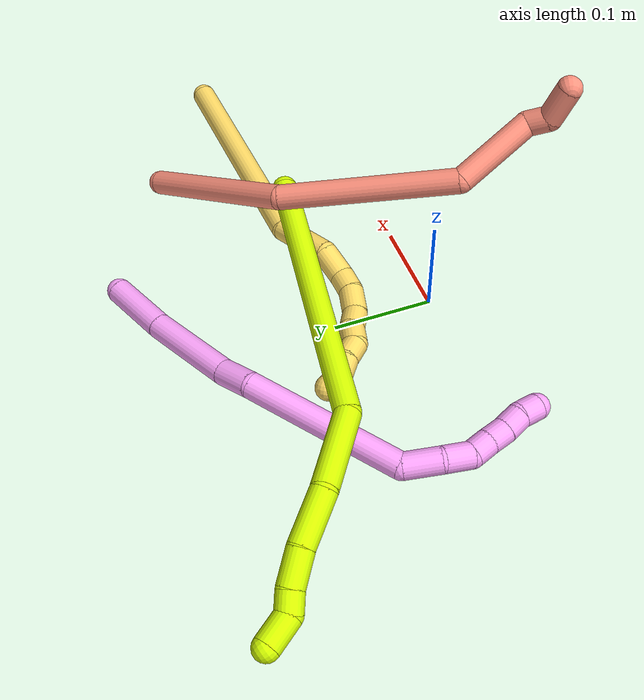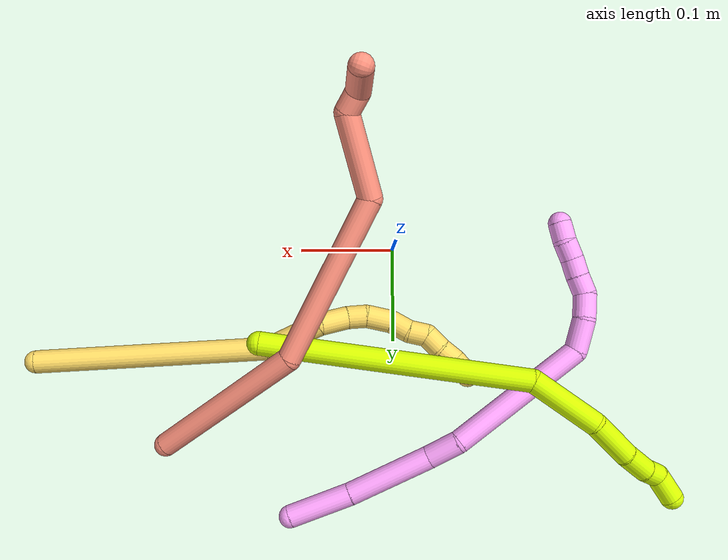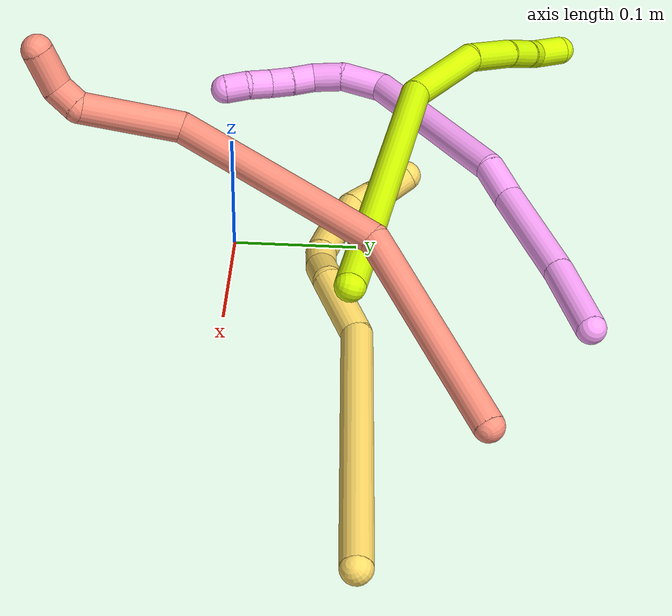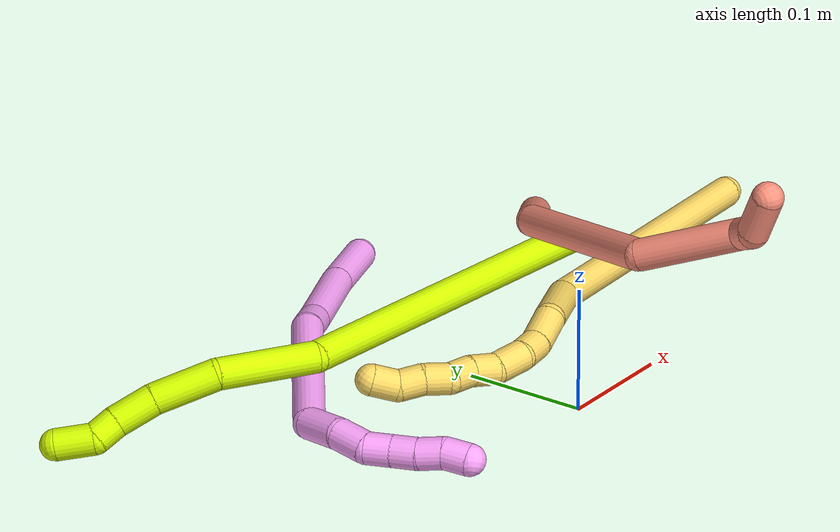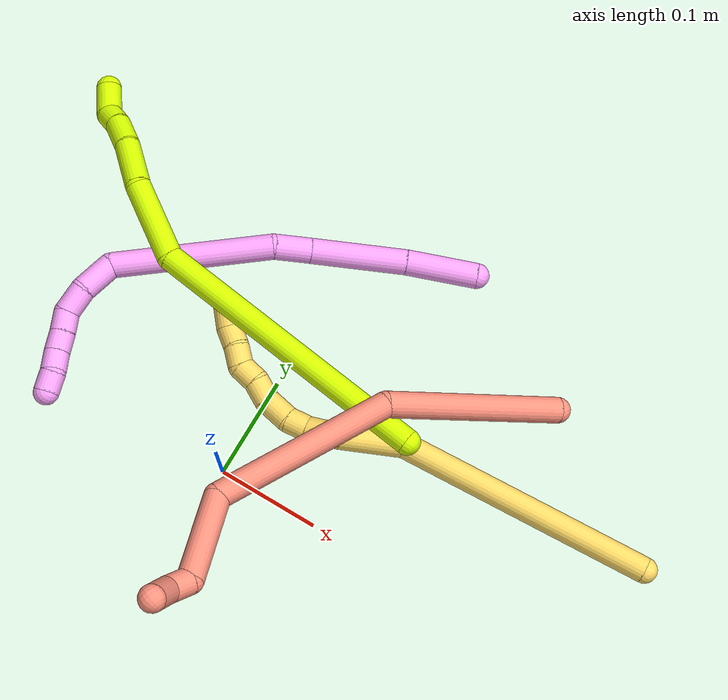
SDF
<sdf version="1.7">
 <world name="default">
  <model name="4">
   <static>0</static>
   <link name="4">
    <collision name="collision-cylinder-e_1_1_4">
     <pose>-0.003451 -0.029742 0.017831 1.03072 -0.099195 -0.056217</pose>
     <geometry><cylinder><radius>0.0125</radius><length>0.069697</length></cylinder></geometry>
     <surface>
      <friction><ode><mu>1.16</mu><mu2>1.16</mu2><slip1>0</slip1><slip2>0</slip2></ode></friction>
      <contact><ode><kp>1e+06</kp><kd>1</kd><max_vel>0</max_vel><min_depth>0.001</min_depth></ode></contact>
     </surface>
    </collision>
    <visual name="visual-cylinder-e_1_1_4">
     <pose>-0.003451 -0.029742 0.017831 1.03072 -0.099195 -0.056217</pose>
     <geometry><cylinder><radius>0.0125</radius><length>0.069697</length></cylinder></geometry>
     <material><ambient>1 0.65098 0.996078 1</ambient></material>
    </visual>
    <collision name="collision-cylinder-e_2_4_5">
     <pose>-0.0152 -0.09884 0.059508 1.02606 -0.178397 -0.100681</pose>
     <geometry><cylinder><radius>0.0125</radius><length>0.093518</length></cylinder></geometry>
     <surface>
      <friction><ode><mu>1.16</mu><mu2>1.16</mu2><slip1>0</slip1><slip2>0</slip2></ode></friction>
      <contact><ode><kp>1e+06</kp><kd>1</kd><max_vel>0</max_vel><min_depth>0.001</min_depth></ode></contact>
     </surface>
    </collision>
    <visual name="visual-cylinder-e_2_4_5">
     <pose>-0.0152 -0.09884 0.059508 1.02606 -0.178397 -0.100681</pose>
     <geometry><cylinder><radius>0.0125</radius><length>0.093518</length></cylinder></geometry>
     <material><ambient>1 0.65098 0.996078 1</ambient></material>
    </visual>
    <collision name="collision-cylinder-e_3_5_6">
     <pose>-0.028229 -0.154291 0.090146 1.17141 -0.264494 -0.176028</pose>
     <geometry><cylinder><radius>0.0125</radius><length>0.036197</length></cylinder></geometry>
     <surface>
      <friction><ode><mu>1.16</mu><mu2>1.16</mu2><slip1>0</slip1><slip2>0</slip2></ode></friction>
      <contact><ode><kp>1e+06</kp><kd>1</kd><max_vel>0</max_vel><min_depth>0.001</min_depth></ode></contact>
     </surface>
    </collision>
    <visual name="visual-cylinder-e_3_5_6">
     <pose>-0.028229 -0.154291 0.090146 1.17141 -0.264494 -0.176028</pose>
     <geometry><cylinder><radius>0.0125</radius><length>0.036197</length></cylinder></geometry>
     <material><ambient>1 0.65098 0.996078 1</ambient></material>
    </visual>
    <collision name="collision-cylinder-e_4_6_7">
     <pose>-0.059554 -0.225541 0.146487 0.838904 -0.344398 -0.154799</pose>
     <geometry><cylinder><radius>0.0125</radius><length>0.157537</length></cylinder></geometry>
     <surface>
      <friction><ode><mu>1.16</mu><mu2>1.16</mu2><slip1>0</slip1><slip2>0</slip2></ode></friction>
      <contact><ode><kp>1e+06</kp><kd>1</kd><max_vel>0</max_vel><min_depth>0.001</min_depth></ode></contact>
     </surface>
    </collision>
    <visual name="visual-cylinder-e_4_6_7">
     <pose>-0.059554 -0.225541 0.146487 0.838904 -0.344398 -0.154799</pose>
     <geometry><cylinder><radius>0.0125</radius><length>0.157537</length></cylinder></geometry>
     <material><ambient>1 0.65098 0.996078 1</ambient></material>
    </visual>
    <collision name="collision-cylinder-e_5_7_8">
     <pose>-0.101418 -0.287171 0.202497 0.786415 -1.03105 -0.46171</pose>
     <geometry><cylinder><radius>0.0125</radius><length>0.035598</length></cylinder></geometry>
     <surface>
      <friction><ode><mu>1.16</mu><mu2>1.16</mu2><slip1>0</slip1><slip2>0</slip2></ode></friction>
      <contact><ode><kp>1e+06</kp><kd>1</kd><max_vel>0</max_vel><min_depth>0.001</min_depth></ode></contact>
     </surface>
    </collision>
    <visual name="visual-cylinder-e_5_7_8">
     <pose>-0.101418 -0.287171 0.202497 0.786415 -1.03105 -0.46171</pose>
     <geometry><cylinder><radius>0.0125</radius><length>0.035598</length></cylinder></geometry>
     <material><ambient>1 0.65098 0.996078 1</ambient></material>
    </visual>
    <collision name="collision-cylinder-e_6_8_9">
     <pose>-0.128416 -0.294906 0.215415 0.192724 -1.05966 -0.113106</pose>
     <geometry><cylinder><radius>0.0125</radius><length>0.026897</length></cylinder></geometry>
     <surface>
      <friction><ode><mu>1.16</mu><mu2>1.16</mu2><slip1>0</slip1><slip2>0</slip2></ode></friction>
      <contact><ode><kp>1e+06</kp><kd>1</kd><max_vel>0</max_vel><min_depth>0.001</min_depth></ode></contact>
     </surface>
    </collision>
    <visual name="visual-cylinder-e_6_8_9">
     <pose>-0.128416 -0.294906 0.215415 0.192724 -1.05966 -0.113106</pose>
     <geometry><cylinder><radius>0.0125</radius><length>0.026897</length></cylinder></geometry>
     <material><ambient>1 0.65098 0.996078 1</ambient></material>
    </visual>
    <collision name="collision-cylinder-e_7_9_10">
     <pose>-0.150055 -0.294017 0.223318 -0.978516 -1.31517 0.780198</pose>
     <geometry><cylinder><radius>0.0125</radius><length>0.020484</length></cylinder></geometry>
     <surface>
      <friction><ode><mu>1.16</mu><mu2>1.16</mu2><slip1>0</slip1><slip2>0</slip2></ode></friction>
      <contact><ode><kp>1e+06</kp><kd>1</kd><max_vel>0</max_vel><min_depth>0.001</min_depth></ode></contact>
     </surface>
    </collision>
    <visual name="visual-cylinder-e_7_9_10">
     <pose>-0.150055 -0.294017 0.223318 -0.978516 -1.31517 0.780198</pose>
     <geometry><cylinder><radius>0.0125</radius><length>0.020484</length></cylinder></geometry>
     <material><ambient>1 0.65098 0.996078 1</ambient></material>
    </visual>
    <collision name="collision-cylinder-e_8_10_11">
     <pose>-0.169771 -0.2905 0.226321 -0.720986 -1.36246 0.593183</pose>
     <geometry><cylinder><radius>0.0125</radius><length>0.020046</length></cylinder></geometry>
     <surface>
      <friction><ode><mu>1.16</mu><mu2>1.16</mu2><slip1>0</slip1><slip2>0</slip2></ode></friction>
      <contact><ode><kp>1e+06</kp><kd>1</kd><max_vel>0</max_vel><min_depth>0.001</min_depth></ode></contact>
     </surface>
    </collision>
    <visual name="visual-cylinder-e_8_10_11">
     <pose>-0.169771 -0.2905 0.226321 -0.720986 -1.36246 0.593183</pose>
     <geometry><cylinder><radius>0.0125</radius><length>0.020046</length></cylinder></geometry>
     <material><ambient>1 0.65098 0.996078 1</ambient></material>
    </visual>
    <collision name="collision-cylinder-e_9_11_12">
     <pose>-0.189449 -0.287538 0.227903 -1.55518 -1.4107 1.3953</pose>
     <geometry><cylinder><radius>0.0125</radius><length>0.02</length></cylinder></geometry>
     <surface>
      <friction><ode><mu>1.16</mu><mu2>1.16</mu2><slip1>0</slip1><slip2>0</slip2></ode></friction>
      <contact><ode><kp>1e+06</kp><kd>1</kd><max_vel>0</max_vel><min_depth>0.001</min_depth></ode></contact>
     </surface>
    </collision>
    <visual name="visual-cylinder-e_9_11_12">
     <pose>-0.189449 -0.287538 0.227903 -1.55518 -1.4107 1.3953</pose>
     <geometry><cylinder><radius>0.0125</radius><length>0.02</length></cylinder></geometry>
     <material><ambient>1 0.65098 0.996078 1</ambient></material>
    </visual>
    <collision name="collision-cylinder-e_10_12_2">
     <pose>-0.208762 -0.284492 0.230932 -0.450149 -1.23102 0.321024</pose>
     <geometry><cylinder><radius>0.0125</radius><length>0.020026</length></cylinder></geometry>
     <surface>
      <friction><ode><mu>1.16</mu><mu2>1.16</mu2><slip1>0</slip1><slip2>0</slip2></ode></friction>
      <contact><ode><kp>1e+06</kp><kd>1</kd><max_vel>0</max_vel><min_depth>0.001</min_depth></ode></contact>
     </surface>
    </collision>
    <visual name="visual-cylinder-e_10_12_2">
     <pose>-0.208762 -0.284492 0.230932 -0.450149 -1.23102 0.321024</pose>
     <geometry><cylinder><radius>0.0125</radius><length>0.020026</length></cylinder></geometry>
     <material><ambient>1 0.65098 0.996078 1</ambient></material>
    </visual>
    <collision name="collision-sphere-2">
     <pose>-0.218202 -0.28304 0.233937 0 -0 0</pose>
     <geometry><sphere><radius>0.0125</radius></sphere></geometry>
     <surface>
      <friction><ode><mu>1.16</mu><mu2>1.16</mu2><slip1>0</slip1><slip2>0</slip2></ode></friction>
      <contact><ode><kp>1e+06</kp><kd>1</kd><max_vel>0</max_vel><min_depth>0.001</min_depth></ode></contact>
     </surface>
    </collision>
    <visual name="visual-sphere-2">
     <pose>-0.218202 -0.28304 0.233937 0 -0 0</pose>
     <geometry><sphere><radius>0.0125</radius></sphere></geometry>
     <material><ambient>1 0.65098 0.996078 1</ambient></material>
    </visual>
    <collision name="collision-sphere-12">
     <pose>-0.199321 -0.285944 0.227928 0 -0 0</pose>
     <geometry><sphere><radius>0.0125</radius></sphere></geometry>
     <surface>
      <friction><ode><mu>1.16</mu><mu2>1.16</mu2><slip1>0</slip1><slip2>0</slip2></ode></friction>
      <contact><ode><kp>1e+06</kp><kd>1</kd><max_vel>0</max_vel><min_depth>0.001</min_depth></ode></contact>
     </surface>
    </collision>
    <visual name="visual-sphere-12">
     <pose>-0.199321 -0.285944 0.227928 0 -0 0</pose>
     <geometry><sphere><radius>0.0125</radius></sphere></geometry>
     <material><ambient>1 0.65098 0.996078 1</ambient></material>
    </visual>
    <collision name="collision-sphere-11">
     <pose>-0.179577 -0.289132 0.227878 0 -0 0</pose>
     <geometry><sphere><radius>0.0125</radius></sphere></geometry>
     <surface>
      <friction><ode><mu>1.16</mu><mu2>1.16</mu2><slip1>0</slip1><slip2>0</slip2></ode></friction>
      <contact><ode><kp>1e+06</kp><kd>1</kd><max_vel>0</max_vel><min_depth>0.001</min_depth></ode></contact>
     </surface>
    </collision>
    <visual name="visual-sphere-11">
     <pose>-0.179577 -0.289132 0.227878 0 -0 0</pose>
     <geometry><sphere><radius>0.0125</radius></sphere></geometry>
     <material><ambient>1 0.65098 0.996078 1</ambient></material>
    </visual>
    <collision name="collision-sphere-10">
     <pose>-0.159965 -0.291869 0.224763 0 -0 0</pose>
     <geometry><sphere><radius>0.0125</radius></sphere></geometry>
     <surface>
      <friction><ode><mu>1.16</mu><mu2>1.16</mu2><slip1>0</slip1><slip2>0</slip2></ode></friction>
      <contact><ode><kp>1e+06</kp><kd>1</kd><max_vel>0</max_vel><min_depth>0.001</min_depth></ode></contact>
     </surface>
    </collision>
    <visual name="visual-sphere-10">
     <pose>-0.159965 -0.291869 0.224763 0 -0 0</pose>
     <geometry><sphere><radius>0.0125</radius></sphere></geometry>
     <material><ambient>1 0.65098 0.996078 1</ambient></material>
    </visual>
    <collision name="collision-sphere-9">
     <pose>-0.140146 -0.296166 0.221872 0 -0 0</pose>
     <geometry><sphere><radius>0.0125</radius></sphere></geometry>
     <surface>
      <friction><ode><mu>1.16</mu><mu2>1.16</mu2><slip1>0</slip1><slip2>0</slip2></ode></friction>
      <contact><ode><kp>1e+06</kp><kd>1</kd><max_vel>0</max_vel><min_depth>0.001</min_depth></ode></contact>
     </surface>
    </collision>
    <visual name="visual-sphere-9">
     <pose>-0.140146 -0.296166 0.221872 0 -0 0</pose>
     <geometry><sphere><radius>0.0125</radius></sphere></geometry>
     <material><ambient>1 0.65098 0.996078 1</ambient></material>
    </visual>
    <collision name="collision-sphere-4">
     <pose>-0.006902 -0.059483 0.035662 0 -0 0</pose>
     <geometry><sphere><radius>0.0125</radius></sphere></geometry>
     <surface>
      <friction><ode><mu>1.16</mu><mu2>1.16</mu2><slip1>0</slip1><slip2>0</slip2></ode></friction>
      <contact><ode><kp>1e+06</kp><kd>1</kd><max_vel>0</max_vel><min_depth>0.001</min_depth></ode></contact>
     </surface>
    </collision>
    <visual name="visual-sphere-4">
     <pose>-0.006902 -0.059483 0.035662 0 -0 0</pose>
     <geometry><sphere><radius>0.0125</radius></sphere></geometry>
     <material><ambient>1 0.65098 0.996078 1</ambient></material>
    </visual>
    <collision name="collision-sphere-1">
     <geometry><sphere><radius>0.0125</radius></sphere></geometry>
     <surface>
      <friction><ode><mu>1.16</mu><mu2>1.16</mu2><slip1>0</slip1><slip2>0</slip2></ode></friction>
      <contact><ode><kp>1e+06</kp><kd>1</kd><max_vel>0</max_vel><min_depth>0.001</min_depth></ode></contact>
     </surface>
    </collision>
    <visual name="visual-sphere-1">
     <geometry><sphere><radius>0.0125</radius></sphere></geometry>
     <material><ambient>1 0.65098 0.996078 1</ambient></material>
    </visual>
    <collision name="collision-sphere-8">
     <pose>-0.116687 -0.293646 0.208958 0 -0 0</pose>
     <geometry><sphere><radius>0.0125</radius></sphere></geometry>
     <surface>
      <friction><ode><mu>1.16</mu><mu2>1.16</mu2><slip1>0</slip1><slip2>0</slip2></ode></friction>
      <contact><ode><kp>1e+06</kp><kd>1</kd><max_vel>0</max_vel><min_depth>0.001</min_depth></ode></contact>
     </surface>
    </collision>
    <visual name="visual-sphere-8">
     <pose>-0.116687 -0.293646 0.208958 0 -0 0</pose>
     <geometry><sphere><radius>0.0125</radius></sphere></geometry>
     <material><ambient>1 0.65098 0.996078 1</ambient></material>
    </visual>
    <collision name="collision-sphere-5">
     <pose>-0.023497 -0.138197 0.083354 0 -0 0</pose>
     <geometry><sphere><radius>0.0125</radius></sphere></geometry>
     <surface>
      <friction><ode><mu>1.16</mu><mu2>1.16</mu2><slip1>0</slip1><slip2>0</slip2></ode></friction>
      <contact><ode><kp>1e+06</kp><kd>1</kd><max_vel>0</max_vel><min_depth>0.001</min_depth></ode></contact>
     </surface>
    </collision>
    <visual name="visual-sphere-5">
     <pose>-0.023497 -0.138197 0.083354 0 -0 0</pose>
     <geometry><sphere><radius>0.0125</radius></sphere></geometry>
     <material><ambient>1 0.65098 0.996078 1</ambient></material>
    </visual>
    <collision name="collision-sphere-6">
     <pose>-0.03296 -0.170385 0.096939 0 -0 0</pose>
     <geometry><sphere><radius>0.0125</radius></sphere></geometry>
     <surface>
      <friction><ode><mu>1.16</mu><mu2>1.16</mu2><slip1>0</slip1><slip2>0</slip2></ode></friction>
      <contact><ode><kp>1e+06</kp><kd>1</kd><max_vel>0</max_vel><min_depth>0.001</min_depth></ode></contact>
     </surface>
    </collision>
    <visual name="visual-sphere-6">
     <pose>-0.03296 -0.170385 0.096939 0 -0 0</pose>
     <geometry><sphere><radius>0.0125</radius></sphere></geometry>
     <material><ambient>1 0.65098 0.996078 1</ambient></material>
    </visual>
    <collision name="collision-sphere-7">
     <pose>-0.086149 -0.280697 0.196035 0 -0 0</pose>
     <geometry><sphere><radius>0.0125</radius></sphere></geometry>
     <surface>
      <friction><ode><mu>1.16</mu><mu2>1.16</mu2><slip1>0</slip1><slip2>0</slip2></ode></friction>
      <contact><ode><kp>1e+06</kp><kd>1</kd><max_vel>0</max_vel><min_depth>0.001</min_depth></ode></contact>
     </surface>
    </collision>
    <visual name="visual-sphere-7">
     <pose>-0.086149 -0.280697 0.196035 0 -0 0</pose>
     <geometry><sphere><radius>0.0125</radius></sphere></geometry>
     <material><ambient>1 0.65098 0.996078 1</ambient></material>
    </visual>
    <inertial>
     <pose>-0.067153 -0.187762 0.128889 0 -0 0</pose>
     <mass>0.5</mass>
     <inertia>
      <ixx>0.000344</ixx>
      <ixy>0</ixy>
      <ixz>0</ixz>
      <iyy>0.000221</iyy>
      <iyz>0</iyz>
      <izz>0.000485</izz>
     </inertia>
    </inertial>
   </link>
   <pose>0.111434 0.288534 0.012502 -2.53262 0.238211 1.85644</pose>
  </model>
  <model name="5">
   <static>0</static>
   <link name="5">
    <collision name="collision-cylinder-e_1_1_4">
     <pose>-0.11102 -0.02168 -0.056233 2.77362 -1.07346 -2.53534</pose>
     <geometry><cylinder><radius>0.0125</radius><length>0.252647</length></cylinder></geometry>
     <surface>
      <friction><ode><mu>1.16</mu><mu2>1.16</mu2><slip1>0</slip1><slip2>0</slip2></ode></friction>
      <contact><ode><kp>1e+06</kp><kd>1</kd><max_vel>0</max_vel><min_depth>0.001</min_depth></ode></contact>
     </surface>
    </collision>
    <visual name="visual-cylinder-e_1_1_4">
     <pose>-0.11102 -0.02168 -0.056233 2.77362 -1.07346 -2.53534</pose>
     <geometry><cylinder><radius>0.0125</radius><length>0.252647</length></cylinder></geometry>
     <material><ambient>1 0.858824 0.4 1</ambient></material>
    </visual>
    <collision name="collision-cylinder-e_2_4_5">
     <pose>-0.24888 -0.058021 -0.1186 1.96704 -1.03619 -1.41639</pose>
     <geometry><cylinder><radius>0.0125</radius><length>0.062386</length></cylinder></geometry>
     <surface>
      <friction><ode><mu>1.16</mu><mu2>1.16</mu2><slip1>0</slip1><slip2>0</slip2></ode></friction>
      <contact><ode><kp>1e+06</kp><kd>1</kd><max_vel>0</max_vel><min_depth>0.001</min_depth></ode></contact>
     </surface>
    </collision>
    <visual name="visual-cylinder-e_2_4_5">
     <pose>-0.24888 -0.058021 -0.1186 1.96704 -1.03619 -1.41639</pose>
     <geometry><cylinder><radius>0.0125</radius><length>0.062386</length></cylinder></geometry>
     <material><ambient>1 0.858824 0.4 1</ambient></material>
    </visual>
    <collision name="collision-cylinder-e_3_5_6">
     <pose>-0.286371 -0.079274 -0.134115 2.52912 -0.748581 -1.78611</pose>
     <geometry><cylinder><radius>0.0125</radius><length>0.031296</length></cylinder></geometry>
     <surface>
      <friction><ode><mu>1.16</mu><mu2>1.16</mu2><slip1>0</slip1><slip2>0</slip2></ode></friction>
      <contact><ode><kp>1e+06</kp><kd>1</kd><max_vel>0</max_vel><min_depth>0.001</min_depth></ode></contact>
     </surface>
    </collision>
    <visual name="visual-cylinder-e_3_5_6">
     <pose>-0.286371 -0.079274 -0.134115 2.52912 -0.748581 -1.78611</pose>
     <geometry><cylinder><radius>0.0125</radius><length>0.031296</length></cylinder></geometry>
     <material><ambient>1 0.858824 0.4 1</ambient></material>
    </visual>
    <collision name="collision-cylinder-e_4_6_7">
     <pose>-0.305931 -0.088152 -0.148883 2.74016 -0.989637 -2.42045</pose>
     <geometry><cylinder><radius>0.0125</radius><length>0.021321</length></cylinder></geometry>
     <surface>
      <friction><ode><mu>1.16</mu><mu2>1.16</mu2><slip1>0</slip1><slip2>0</slip2></ode></friction>
      <contact><ode><kp>1e+06</kp><kd>1</kd><max_vel>0</max_vel><min_depth>0.001</min_depth></ode></contact>
     </surface>
    </collision>
    <visual name="visual-cylinder-e_4_6_7">
     <pose>-0.305931 -0.088152 -0.148883 2.74016 -0.989637 -2.42045</pose>
     <geometry><cylinder><radius>0.0125</radius><length>0.021321</length></cylinder></geometry>
     <material><ambient>1 0.858824 0.4 1</ambient></material>
    </visual>
    <collision name="collision-cylinder-e_5_7_8">
     <pose>-0.325784 -0.089735 -0.162812 -3.05939 -0.906343 2.97309</pose>
     <geometry><cylinder><radius>0.0125</radius><length>0.0278</length></cylinder></geometry>
     <surface>
      <friction><ode><mu>1.16</mu><mu2>1.16</mu2><slip1>0</slip1><slip2>0</slip2></ode></friction>
      <contact><ode><kp>1e+06</kp><kd>1</kd><max_vel>0</max_vel><min_depth>0.001</min_depth></ode></contact>
     </surface>
    </collision>
    <visual name="visual-cylinder-e_5_7_8">
     <pose>-0.325784 -0.089735 -0.162812 -3.05939 -0.906343 2.97309</pose>
     <geometry><cylinder><radius>0.0125</radius><length>0.0278</length></cylinder></geometry>
     <material><ambient>1 0.858824 0.4 1</ambient></material>
    </visual>
    <collision name="collision-cylinder-e_6_8_9">
     <pose>-0.345395 -0.084764 -0.176504 -2.4497 -0.913674 1.8761</pose>
     <geometry><cylinder><radius>0.0125</radius><length>0.021897</length></cylinder></geometry>
     <surface>
      <friction><ode><mu>1.16</mu><mu2>1.16</mu2><slip1>0</slip1><slip2>0</slip2></ode></friction>
      <contact><ode><kp>1e+06</kp><kd>1</kd><max_vel>0</max_vel><min_depth>0.001</min_depth></ode></contact>
     </surface>
    </collision>
    <visual name="visual-cylinder-e_6_8_9">
     <pose>-0.345395 -0.084764 -0.176504 -2.4497 -0.913674 1.8761</pose>
     <geometry><cylinder><radius>0.0125</radius><length>0.021897</length></cylinder></geometry>
     <material><ambient>1 0.858824 0.4 1</ambient></material>
    </visual>
    <collision name="collision-cylinder-e_7_9_10">
     <pose>-0.362585 -0.079627 -0.187055 -2.98173 -1.00011 2.85045</pose>
     <geometry><cylinder><radius>0.0125</radius><length>0.020253</length></cylinder></geometry>
     <surface>
      <friction><ode><mu>1.16</mu><mu2>1.16</mu2><slip1>0</slip1><slip2>0</slip2></ode></friction>
      <contact><ode><kp>1e+06</kp><kd>1</kd><max_vel>0</max_vel><min_depth>0.001</min_depth></ode></contact>
     </surface>
    </collision>
    <visual name="visual-cylinder-e_7_9_10">
     <pose>-0.362585 -0.079627 -0.187055 -2.98173 -1.00011 2.85045</pose>
     <geometry><cylinder><radius>0.0125</radius><length>0.020253</length></cylinder></geometry>
     <material><ambient>1 0.858824 0.4 1</ambient></material>
    </visual>
    <collision name="collision-cylinder-e_8_10_11">
     <pose>-0.377335 -0.072512 -0.197746 -2.27376 -0.650493 1.25823</pose>
     <geometry><cylinder><radius>0.0125</radius><length>0.020568</length></cylinder></geometry>
     <surface>
      <friction><ode><mu>1.16</mu><mu2>1.16</mu2><slip1>0</slip1><slip2>0</slip2></ode></friction>
      <contact><ode><kp>1e+06</kp><kd>1</kd><max_vel>0</max_vel><min_depth>0.001</min_depth></ode></contact>
     </surface>
    </collision>
    <visual name="visual-cylinder-e_8_10_11">
     <pose>-0.377335 -0.072512 -0.197746 -2.27376 -0.650493 1.25823</pose>
     <geometry><cylinder><radius>0.0125</radius><length>0.020568</length></cylinder></geometry>
     <material><ambient>1 0.858824 0.4 1</ambient></material>
    </visual>
    <collision name="collision-cylinder-e_9_11_12">
     <pose>-0.389489 -0.061723 -0.209951 -2.56005 -0.621501 1.64136</pose>
     <geometry><cylinder><radius>0.0125</radius><length>0.020356</length></cylinder></geometry>
     <surface>
      <friction><ode><mu>1.16</mu><mu2>1.16</mu2><slip1>0</slip1><slip2>0</slip2></ode></friction>
      <contact><ode><kp>1e+06</kp><kd>1</kd><max_vel>0</max_vel><min_depth>0.001</min_depth></ode></contact>
     </surface>
    </collision>
    <visual name="visual-cylinder-e_9_11_12">
     <pose>-0.389489 -0.061723 -0.209951 -2.56005 -0.621501 1.64136</pose>
     <geometry><cylinder><radius>0.0125</radius><length>0.020356</length></cylinder></geometry>
     <material><ambient>1 0.858824 0.4 1</ambient></material>
    </visual>
    <collision name="collision-cylinder-e_10_12_2">
     <pose>-0.402278 -0.049558 -0.220052 -1.96686 -0.693343 0.994345</pose>
     <geometry><cylinder><radius>0.0125</radius><length>0.021477</length></cylinder></geometry>
     <surface>
      <friction><ode><mu>1.16</mu><mu2>1.16</mu2><slip1>0</slip1><slip2>0</slip2></ode></friction>
      <contact><ode><kp>1e+06</kp><kd>1</kd><max_vel>0</max_vel><min_depth>0.001</min_depth></ode></contact>
     </surface>
    </collision>
    <visual name="visual-cylinder-e_10_12_2">
     <pose>-0.402278 -0.049558 -0.220052 -1.96686 -0.693343 0.994345</pose>
     <geometry><cylinder><radius>0.0125</radius><length>0.021477</length></cylinder></geometry>
     <material><ambient>1 0.858824 0.4 1</ambient></material>
    </visual>
    <collision name="collision-sphere-2">
     <pose>-0.409141 -0.041938 -0.223238 0 -0 0</pose>
     <geometry><sphere><radius>0.0125</radius></sphere></geometry>
     <surface>
      <friction><ode><mu>1.16</mu><mu2>1.16</mu2><slip1>0</slip1><slip2>0</slip2></ode></friction>
      <contact><ode><kp>1e+06</kp><kd>1</kd><max_vel>0</max_vel><min_depth>0.001</min_depth></ode></contact>
     </surface>
    </collision>
    <visual name="visual-sphere-2">
     <pose>-0.409141 -0.041938 -0.223238 0 -0 0</pose>
     <geometry><sphere><radius>0.0125</radius></sphere></geometry>
     <material><ambient>1 0.858824 0.4 1</ambient></material>
    </visual>
    <collision name="collision-sphere-12">
     <pose>-0.395415 -0.057177 -0.216865 0 -0 0</pose>
     <geometry><sphere><radius>0.0125</radius></sphere></geometry>
     <surface>
      <friction><ode><mu>1.16</mu><mu2>1.16</mu2><slip1>0</slip1><slip2>0</slip2></ode></friction>
      <contact><ode><kp>1e+06</kp><kd>1</kd><max_vel>0</max_vel><min_depth>0.001</min_depth></ode></contact>
     </surface>
    </collision>
    <visual name="visual-sphere-12">
     <pose>-0.395415 -0.057177 -0.216865 0 -0 0</pose>
     <geometry><sphere><radius>0.0125</radius></sphere></geometry>
     <material><ambient>1 0.858824 0.4 1</ambient></material>
    </visual>
    <collision name="collision-sphere-11">
     <pose>-0.383563 -0.066268 -0.203037 0 -0 0</pose>
     <geometry><sphere><radius>0.0125</radius></sphere></geometry>
     <surface>
      <friction><ode><mu>1.16</mu><mu2>1.16</mu2><slip1>0</slip1><slip2>0</slip2></ode></friction>
      <contact><ode><kp>1e+06</kp><kd>1</kd><max_vel>0</max_vel><min_depth>0.001</min_depth></ode></contact>
     </surface>
    </collision>
    <visual name="visual-sphere-11">
     <pose>-0.383563 -0.066268 -0.203037 0 -0 0</pose>
     <geometry><sphere><radius>0.0125</radius></sphere></geometry>
     <material><ambient>1 0.858824 0.4 1</ambient></material>
    </visual>
    <collision name="collision-sphere-10">
     <pose>-0.371107 -0.078756 -0.192455 0 -0 0</pose>
     <geometry><sphere><radius>0.0125</radius></sphere></geometry>
     <surface>
      <friction><ode><mu>1.16</mu><mu2>1.16</mu2><slip1>0</slip1><slip2>0</slip2></ode></friction>
      <contact><ode><kp>1e+06</kp><kd>1</kd><max_vel>0</max_vel><min_depth>0.001</min_depth></ode></contact>
     </surface>
    </collision>
    <visual name="visual-sphere-10">
     <pose>-0.371107 -0.078756 -0.192455 0 -0 0</pose>
     <geometry><sphere><radius>0.0125</radius></sphere></geometry>
     <material><ambient>1 0.858824 0.4 1</ambient></material>
    </visual>
    <collision name="collision-sphere-9">
     <pose>-0.354064 -0.080497 -0.181654 0 -0 0</pose>
     <geometry><sphere><radius>0.0125</radius></sphere></geometry>
     <surface>
      <friction><ode><mu>1.16</mu><mu2>1.16</mu2><slip1>0</slip1><slip2>0</slip2></ode></friction>
      <contact><ode><kp>1e+06</kp><kd>1</kd><max_vel>0</max_vel><min_depth>0.001</min_depth></ode></contact>
     </surface>
    </collision>
    <visual name="visual-sphere-9">
     <pose>-0.354064 -0.080497 -0.181654 0 -0 0</pose>
     <geometry><sphere><radius>0.0125</radius></sphere></geometry>
     <material><ambient>1 0.858824 0.4 1</ambient></material>
    </visual>
    <collision name="collision-sphere-4">
     <pose>-0.22204 -0.04336 -0.112466 0 -0 0</pose>
     <geometry><sphere><radius>0.0125</radius></sphere></geometry>
     <surface>
      <friction><ode><mu>1.16</mu><mu2>1.16</mu2><slip1>0</slip1><slip2>0</slip2></ode></friction>
      <contact><ode><kp>1e+06</kp><kd>1</kd><max_vel>0</max_vel><min_depth>0.001</min_depth></ode></contact>
     </surface>
    </collision>
    <visual name="visual-sphere-4">
     <pose>-0.22204 -0.04336 -0.112466 0 -0 0</pose>
     <geometry><sphere><radius>0.0125</radius></sphere></geometry>
     <material><ambient>1 0.858824 0.4 1</ambient></material>
    </visual>
    <collision name="collision-sphere-1">
     <geometry><sphere><radius>0.0125</radius></sphere></geometry>
     <surface>
      <friction><ode><mu>1.16</mu><mu2>1.16</mu2><slip1>0</slip1><slip2>0</slip2></ode></friction>
      <contact><ode><kp>1e+06</kp><kd>1</kd><max_vel>0</max_vel><min_depth>0.001</min_depth></ode></contact>
     </surface>
    </collision>
    <visual name="visual-sphere-1">
     <geometry><sphere><radius>0.0125</radius></sphere></geometry>
     <material><ambient>1 0.858824 0.4 1</ambient></material>
    </visual>
    <collision name="collision-sphere-8">
     <pose>-0.336727 -0.089031 -0.171354 0 -0 0</pose>
     <geometry><sphere><radius>0.0125</radius></sphere></geometry>
     <surface>
      <friction><ode><mu>1.16</mu><mu2>1.16</mu2><slip1>0</slip1><slip2>0</slip2></ode></friction>
      <contact><ode><kp>1e+06</kp><kd>1</kd><max_vel>0</max_vel><min_depth>0.001</min_depth></ode></contact>
     </surface>
    </collision>
    <visual name="visual-sphere-8">
     <pose>-0.336727 -0.089031 -0.171354 0 -0 0</pose>
     <geometry><sphere><radius>0.0125</radius></sphere></geometry>
     <material><ambient>1 0.858824 0.4 1</ambient></material>
    </visual>
    <collision name="collision-sphere-5">
     <pose>-0.275721 -0.072683 -0.124734 0 -0 0</pose>
     <geometry><sphere><radius>0.0125</radius></sphere></geometry>
     <surface>
      <friction><ode><mu>1.16</mu><mu2>1.16</mu2><slip1>0</slip1><slip2>0</slip2></ode></friction>
      <contact><ode><kp>1e+06</kp><kd>1</kd><max_vel>0</max_vel><min_depth>0.001</min_depth></ode></contact>
     </surface>
    </collision>
    <visual name="visual-sphere-5">
     <pose>-0.275721 -0.072683 -0.124734 0 -0 0</pose>
     <geometry><sphere><radius>0.0125</radius></sphere></geometry>
     <material><ambient>1 0.858824 0.4 1</ambient></material>
    </visual>
    <collision name="collision-sphere-6">
     <pose>-0.297021 -0.085865 -0.143495 0 -0 0</pose>
     <geometry><sphere><radius>0.0125</radius></sphere></geometry>
     <surface>
      <friction><ode><mu>1.16</mu><mu2>1.16</mu2><slip1>0</slip1><slip2>0</slip2></ode></friction>
      <contact><ode><kp>1e+06</kp><kd>1</kd><max_vel>0</max_vel><min_depth>0.001</min_depth></ode></contact>
     </surface>
    </collision>
    <visual name="visual-sphere-6">
     <pose>-0.297021 -0.085865 -0.143495 0 -0 0</pose>
     <geometry><sphere><radius>0.0125</radius></sphere></geometry>
     <material><ambient>1 0.858824 0.4 1</ambient></material>
    </visual>
    <collision name="collision-sphere-7">
     <pose>-0.314841 -0.090438 -0.15427 0 -0 0</pose>
     <geometry><sphere><radius>0.0125</radius></sphere></geometry>
     <surface>
      <friction><ode><mu>1.16</mu><mu2>1.16</mu2><slip1>0</slip1><slip2>0</slip2></ode></friction>
      <contact><ode><kp>1e+06</kp><kd>1</kd><max_vel>0</max_vel><min_depth>0.001</min_depth></ode></contact>
     </surface>
    </collision>
    <visual name="visual-sphere-7">
     <pose>-0.314841 -0.090438 -0.15427 0 -0 0</pose>
     <geometry><sphere><radius>0.0125</radius></sphere></geometry>
     <material><ambient>1 0.858824 0.4 1</ambient></material>
    </visual>
    <inertial>
     <pose>-0.214706 -0.046466 -0.108448 0 -0 0</pose>
     <mass>0.5</mass>
     <inertia>
      <ixx>-0.000942</ixx>
      <ixy>0</ixy>
      <ixz>0</ixz>
      <iyy>0.000928</iyy>
      <iyz>0</iyz>
      <izz>0.001445</izz>
     </inertia>
    </inertial>
   </link>
   <pose>0.387513 0.121468 0.011499 0.32484 0.515791 0.033614</pose>
  </model>
  <model name="15">
   <static>0</static>
   <link name="15">
    <collision name="collision-cylinder-e_1_1_4">
     <pose>-0.136636 -0.017636 0.038792 0.426692 -1.26849 -0.316083</pose>
     <geometry><cylinder><radius>0.0125</radius><length>0.286253</length></cylinder></geometry>
     <surface>
      <friction><ode><mu>1.16</mu><mu2>1.16</mu2><slip1>0</slip1><slip2>0</slip2></ode></friction>
      <contact><ode><kp>1e+06</kp><kd>1</kd><max_vel>0</max_vel><min_depth>0.001</min_depth></ode></contact>
     </surface>
    </collision>
    <visual name="visual-cylinder-e_1_1_4">
     <pose>-0.136636 -0.017636 0.038792 0.426692 -1.26849 -0.316083</pose>
     <geometry><cylinder><radius>0.0125</radius><length>0.286253</length></cylinder></geometry>
     <material><ambient>0.835294 1 0 1</ambient></material>
    </visual>
    <collision name="collision-cylinder-e_2_4_5">
     <pose>-0.30157 -0.045156 0.103343 0.366408 -0.798031 -0.155925</pose>
     <geometry><cylinder><radius>0.0125</radius><length>0.079044</length></cylinder></geometry>
     <surface>
      <friction><ode><mu>1.16</mu><mu2>1.16</mu2><slip1>0</slip1><slip2>0</slip2></ode></friction>
      <contact><ode><kp>1e+06</kp><kd>1</kd><max_vel>0</max_vel><min_depth>0.001</min_depth></ode></contact>
     </surface>
    </collision>
    <visual name="visual-cylinder-e_2_4_5">
     <pose>-0.30157 -0.045156 0.103343 0.366408 -0.798031 -0.155925</pose>
     <geometry><cylinder><radius>0.0125</radius><length>0.079044</length></cylinder></geometry>
     <material><ambient>0.835294 1 0 1</ambient></material>
    </visual>
    <collision name="collision-cylinder-e_3_5_6">
     <pose>-0.344958 -0.054808 0.149628 -0.011355 -0.633933 0.003725</pose>
     <geometry><cylinder><radius>0.0125</radius><length>0.050955</length></cylinder></geometry>
     <surface>
      <friction><ode><mu>1.16</mu><mu2>1.16</mu2><slip1>0</slip1><slip2>0</slip2></ode></friction>
      <contact><ode><kp>1e+06</kp><kd>1</kd><max_vel>0</max_vel><min_depth>0.001</min_depth></ode></contact>
     </surface>
    </collision>
    <visual name="visual-cylinder-e_3_5_6">
     <pose>-0.344958 -0.054808 0.149628 -0.011355 -0.633933 0.003725</pose>
     <geometry><cylinder><radius>0.0125</radius><length>0.050955</length></cylinder></geometry>
     <material><ambient>0.835294 1 0 1</ambient></material>
    </visual>
    <collision name="collision-cylinder-e_4_6_7">
     <pose>-0.37084 -0.052053 0.182578 -0.200258 -0.70524 0.073909</pose>
     <geometry><cylinder><radius>0.0125</radius><length>0.033298</length></cylinder></geometry>
     <surface>
      <friction><ode><mu>1.16</mu><mu2>1.16</mu2><slip1>0</slip1><slip2>0</slip2></ode></friction>
      <contact><ode><kp>1e+06</kp><kd>1</kd><max_vel>0</max_vel><min_depth>0.001</min_depth></ode></contact>
     </surface>
    </collision>
    <visual name="visual-cylinder-e_4_6_7">
     <pose>-0.37084 -0.052053 0.182578 -0.200258 -0.70524 0.073909</pose>
     <geometry><cylinder><radius>0.0125</radius><length>0.033298</length></cylinder></geometry>
     <material><ambient>0.835294 1 0 1</ambient></material>
    </visual>
    <collision name="collision-cylinder-e_5_7_8">
     <pose>-0.389257 -0.046941 0.201095 -0.401925 -0.855783 0.185283</pose>
     <geometry><cylinder><radius>0.0125</radius><length>0.020195</length></cylinder></geometry>
     <surface>
      <friction><ode><mu>1.16</mu><mu2>1.16</mu2><slip1>0</slip1><slip2>0</slip2></ode></friction>
      <contact><ode><kp>1e+06</kp><kd>1</kd><max_vel>0</max_vel><min_depth>0.001</min_depth></ode></contact>
     </surface>
    </collision>
    <visual name="visual-cylinder-e_5_7_8">
     <pose>-0.389257 -0.046941 0.201095 -0.401925 -0.855783 0.185283</pose>
     <geometry><cylinder><radius>0.0125</radius><length>0.020195</length></cylinder></geometry>
     <material><ambient>0.835294 1 0 1</ambient></material>
    </visual>
    <collision name="collision-cylinder-e_6_8_2">
     <pose>-0.403354 -0.046907 0.220619 0.188031 -0.442152 -0.042379</pose>
     <geometry><cylinder><radius>0.0125</radius><length>0.030255</length></cylinder></geometry>
     <surface>
      <friction><ode><mu>1.16</mu><mu2>1.16</mu2><slip1>0</slip1><slip2>0</slip2></ode></friction>
      <contact><ode><kp>1e+06</kp><kd>1</kd><max_vel>0</max_vel><min_depth>0.001</min_depth></ode></contact>
     </surface>
    </collision>
    <visual name="visual-cylinder-e_6_8_2">
     <pose>-0.403354 -0.046907 0.220619 0.188031 -0.442152 -0.042379</pose>
     <geometry><cylinder><radius>0.0125</radius><length>0.030255</length></cylinder></geometry>
     <material><ambient>0.835294 1 0 1</ambient></material>
    </visual>
    <collision name="collision-sphere-2">
     <pose>-0.409827 -0.049463 0.234051 0 -0 0</pose>
     <geometry><sphere><radius>0.0125</radius></sphere></geometry>
     <surface>
      <friction><ode><mu>1.16</mu><mu2>1.16</mu2><slip1>0</slip1><slip2>0</slip2></ode></friction>
      <contact><ode><kp>1e+06</kp><kd>1</kd><max_vel>0</max_vel><min_depth>0.001</min_depth></ode></contact>
     </surface>
    </collision>
    <visual name="visual-sphere-2">
     <pose>-0.409827 -0.049463 0.234051 0 -0 0</pose>
     <geometry><sphere><radius>0.0125</radius></sphere></geometry>
     <material><ambient>0.835294 1 0 1</ambient></material>
    </visual>
    <collision name="collision-sphere-4">
     <pose>-0.273272 -0.035271 0.077583 0 -0 0</pose>
     <geometry><sphere><radius>0.0125</radius></sphere></geometry>
     <surface>
      <friction><ode><mu>1.16</mu><mu2>1.16</mu2><slip1>0</slip1><slip2>0</slip2></ode></friction>
      <contact><ode><kp>1e+06</kp><kd>1</kd><max_vel>0</max_vel><min_depth>0.001</min_depth></ode></contact>
     </surface>
    </collision>
    <visual name="visual-sphere-4">
     <pose>-0.273272 -0.035271 0.077583 0 -0 0</pose>
     <geometry><sphere><radius>0.0125</radius></sphere></geometry>
     <material><ambient>0.835294 1 0 1</ambient></material>
    </visual>
    <collision name="collision-sphere-1">
     <geometry><sphere><radius>0.0125</radius></sphere></geometry>
     <surface>
      <friction><ode><mu>1.16</mu><mu2>1.16</mu2><slip1>0</slip1><slip2>0</slip2></ode></friction>
      <contact><ode><kp>1e+06</kp><kd>1</kd><max_vel>0</max_vel><min_depth>0.001</min_depth></ode></contact>
     </surface>
    </collision>
    <visual name="visual-sphere-1">
     <geometry><sphere><radius>0.0125</radius></sphere></geometry>
     <material><ambient>0.835294 1 0 1</ambient></material>
    </visual>
    <collision name="collision-sphere-8">
     <pose>-0.396881 -0.044352 0.207188 0 -0 0</pose>
     <geometry><sphere><radius>0.0125</radius></sphere></geometry>
     <surface>
      <friction><ode><mu>1.16</mu><mu2>1.16</mu2><slip1>0</slip1><slip2>0</slip2></ode></friction>
      <contact><ode><kp>1e+06</kp><kd>1</kd><max_vel>0</max_vel><min_depth>0.001</min_depth></ode></contact>
     </surface>
    </collision>
    <visual name="visual-sphere-8">
     <pose>-0.396881 -0.044352 0.207188 0 -0 0</pose>
     <geometry><sphere><radius>0.0125</radius></sphere></geometry>
     <material><ambient>0.835294 1 0 1</ambient></material>
    </visual>
    <collision name="collision-sphere-5">
     <pose>-0.329867 -0.055041 0.129102 0 -0 0</pose>
     <geometry><sphere><radius>0.0125</radius></sphere></geometry>
     <surface>
      <friction><ode><mu>1.16</mu><mu2>1.16</mu2><slip1>0</slip1><slip2>0</slip2></ode></friction>
      <contact><ode><kp>1e+06</kp><kd>1</kd><max_vel>0</max_vel><min_depth>0.001</min_depth></ode></contact>
     </surface>
    </collision>
    <visual name="visual-sphere-5">
     <pose>-0.329867 -0.055041 0.129102 0 -0 0</pose>
     <geometry><sphere><radius>0.0125</radius></sphere></geometry>
     <material><ambient>0.835294 1 0 1</ambient></material>
    </visual>
    <collision name="collision-sphere-6">
     <pose>-0.360048 -0.054575 0.170155 0 -0 0</pose>
     <geometry><sphere><radius>0.0125</radius></sphere></geometry>
     <surface>
      <friction><ode><mu>1.16</mu><mu2>1.16</mu2><slip1>0</slip1><slip2>0</slip2></ode></friction>
      <contact><ode><kp>1e+06</kp><kd>1</kd><max_vel>0</max_vel><min_depth>0.001</min_depth></ode></contact>
     </surface>
    </collision>
    <visual name="visual-sphere-6">
     <pose>-0.360048 -0.054575 0.170155 0 -0 0</pose>
     <geometry><sphere><radius>0.0125</radius></sphere></geometry>
     <material><ambient>0.835294 1 0 1</ambient></material>
    </visual>
    <collision name="collision-sphere-7">
     <pose>-0.381632 -0.049531 0.195002 0 -0 0</pose>
     <geometry><sphere><radius>0.0125</radius></sphere></geometry>
     <surface>
      <friction><ode><mu>1.16</mu><mu2>1.16</mu2><slip1>0</slip1><slip2>0</slip2></ode></friction>
      <contact><ode><kp>1e+06</kp><kd>1</kd><max_vel>0</max_vel><min_depth>0.001</min_depth></ode></contact>
     </surface>
    </collision>
    <visual name="visual-sphere-7">
     <pose>-0.381632 -0.049531 0.195002 0 -0 0</pose>
     <geometry><sphere><radius>0.0125</radius></sphere></geometry>
     <material><ambient>0.835294 1 0 1</ambient></material>
    </visual>
    <inertial>
     <pose>-0.225879 -0.031021 0.087425 0 -0 0</pose>
     <mass>0.5</mass>
     <inertia>
      <ixx>0.000386</ixx>
      <ixy>0</ixy>
      <ixz>0</ixz>
      <iyy>0.001817</iyy>
      <iyz>0</iyz>
      <izz>0.002193</izz>
     </inertia>
    </inertial>
   </link>
   <pose>0.140522 0.102649 0.066796 -1.93066 -0.046945 0.163354</pose>
  </model>
  <model name="16">
   <static>0</static>
   <link name="16">
    <collision name="collision-cylinder-e_1_1_4">
     <pose>0.019583 -0.072674 0.046482 1.00177 0.223216 0.122556</pose>
     <geometry><cylinder><radius>0.0125</radius><length>0.176925</length></cylinder></geometry>
     <surface>
      <friction><ode><mu>1.16</mu><mu2>1.16</mu2><slip1>0</slip1><slip2>0</slip2></ode></friction>
      <contact><ode><kp>1e+06</kp><kd>1</kd><max_vel>0</max_vel><min_depth>0.001</min_depth></ode></contact>
     </surface>
    </collision>
    <visual name="visual-cylinder-e_1_1_4">
     <pose>0.019583 -0.072674 0.046482 1.00177 0.223216 0.122556</pose>
     <geometry><cylinder><radius>0.0125</radius><length>0.176925</length></cylinder></geometry>
     <material><ambient>1 0.576471 0.494118 1</ambient></material>
    </visual>
    <collision name="collision-cylinder-e_2_4_5">
     <pose>0.039757 -0.234627 0.10379 1.45013 0.006573 0.005824</pose>
     <geometry><cylinder><radius>0.0125</radius><length>0.17987</length></cylinder></geometry>
     <surface>
      <friction><ode><mu>1.16</mu><mu2>1.16</mu2><slip1>0</slip1><slip2>0</slip2></ode></friction>
      <contact><ode><kp>1e+06</kp><kd>1</kd><max_vel>0</max_vel><min_depth>0.001</min_depth></ode></contact>
     </surface>
    </collision>
    <visual name="visual-cylinder-e_2_4_5">
     <pose>0.039757 -0.234627 0.10379 1.45013 0.006573 0.005824</pose>
     <geometry><cylinder><radius>0.0125</radius><length>0.17987</length></cylinder></geometry>
     <material><ambient>1 0.576471 0.494118 1</ambient></material>
    </visual>
    <collision name="collision-cylinder-e_3_5_6">
     <pose>0.045589 -0.358443 0.090189 2.18639 0.123273 0.237358</pose>
     <geometry><cylinder><radius>0.0125</radius><length>0.085251</length></cylinder></geometry>
     <surface>
      <friction><ode><mu>1.16</mu><mu2>1.16</mu2><slip1>0</slip1><slip2>0</slip2></ode></friction>
      <contact><ode><kp>1e+06</kp><kd>1</kd><max_vel>0</max_vel><min_depth>0.001</min_depth></ode></contact>
     </surface>
    </collision>
    <visual name="visual-cylinder-e_3_5_6">
     <pose>0.045589 -0.358443 0.090189 2.18639 0.123273 0.237358</pose>
     <geometry><cylinder><radius>0.0125</radius><length>0.085251</length></cylinder></geometry>
     <material><ambient>1 0.576471 0.494118 1</ambient></material>
    </visual>
    <collision name="collision-cylinder-e_4_6_7">
     <pose>0.05329 -0.403793 0.067643 1.39861 0.220497 0.185679</pose>
     <geometry><cylinder><radius>0.0125</radius><length>0.022495</length></cylinder></geometry>
     <surface>
      <friction><ode><mu>1.16</mu><mu2>1.16</mu2><slip1>0</slip1><slip2>0</slip2></ode></friction>
      <contact><ode><kp>1e+06</kp><kd>1</kd><max_vel>0</max_vel><min_depth>0.001</min_depth></ode></contact>
     </surface>
    </collision>
    <visual name="visual-cylinder-e_4_6_7">
     <pose>0.05329 -0.403793 0.067643 1.39861 0.220497 0.185679</pose>
     <geometry><cylinder><radius>0.0125</radius><length>0.022495</length></cylinder></geometry>
     <material><ambient>1 0.576471 0.494118 1</ambient></material>
    </visual>
    <collision name="collision-cylinder-e_5_7_2">
     <pose>0.069805 -0.425186 0.067318 1.77631 0.915245 1.08926</pose>
     <geometry><cylinder><radius>0.0125</radius><length>0.035459</length></cylinder></geometry>
     <surface>
      <friction><ode><mu>1.16</mu><mu2>1.16</mu2><slip1>0</slip1><slip2>0</slip2></ode></friction>
      <contact><ode><kp>1e+06</kp><kd>1</kd><max_vel>0</max_vel><min_depth>0.001</min_depth></ode></contact>
     </surface>
    </collision>
    <visual name="visual-cylinder-e_5_7_2">
     <pose>0.069805 -0.425186 0.067318 1.77631 0.915245 1.08926</pose>
     <geometry><cylinder><radius>0.0125</radius><length>0.035459</length></cylinder></geometry>
     <material><ambient>1 0.576471 0.494118 1</ambient></material>
    </visual>
    <collision name="collision-sphere-2">
     <pose>0.083859 -0.435767 0.065112 0 -0 0</pose>
     <geometry><sphere><radius>0.0125</radius></sphere></geometry>
     <surface>
      <friction><ode><mu>1.16</mu><mu2>1.16</mu2><slip1>0</slip1><slip2>0</slip2></ode></friction>
      <contact><ode><kp>1e+06</kp><kd>1</kd><max_vel>0</max_vel><min_depth>0.001</min_depth></ode></contact>
     </surface>
    </collision>
    <visual name="visual-sphere-2">
     <pose>0.083859 -0.435767 0.065112 0 -0 0</pose>
     <geometry><sphere><radius>0.0125</radius></sphere></geometry>
     <material><ambient>1 0.576471 0.494118 1</ambient></material>
    </visual>
    <collision name="collision-sphere-7">
     <pose>0.05575 -0.414606 0.069523 0 -0 0</pose>
     <geometry><sphere><radius>0.0125</radius></sphere></geometry>
     <surface>
      <friction><ode><mu>1.16</mu><mu2>1.16</mu2><slip1>0</slip1><slip2>0</slip2></ode></friction>
      <contact><ode><kp>1e+06</kp><kd>1</kd><max_vel>0</max_vel><min_depth>0.001</min_depth></ode></contact>
     </surface>
    </collision>
    <visual name="visual-sphere-7">
     <pose>0.05575 -0.414606 0.069523 0 -0 0</pose>
     <geometry><sphere><radius>0.0125</radius></sphere></geometry>
     <material><ambient>1 0.576471 0.494118 1</ambient></material>
    </visual>
    <collision name="collision-sphere-6">
     <pose>0.05083 -0.39298 0.065762 0 -0 0</pose>
     <geometry><sphere><radius>0.0125</radius></sphere></geometry>
     <surface>
      <friction><ode><mu>1.16</mu><mu2>1.16</mu2><slip1>0</slip1><slip2>0</slip2></ode></friction>
      <contact><ode><kp>1e+06</kp><kd>1</kd><max_vel>0</max_vel><min_depth>0.001</min_depth></ode></contact>
     </surface>
    </collision>
    <visual name="visual-sphere-6">
     <pose>0.05083 -0.39298 0.065762 0 -0 0</pose>
     <geometry><sphere><radius>0.0125</radius></sphere></geometry>
     <material><ambient>1 0.576471 0.494118 1</ambient></material>
    </visual>
    <collision name="collision-sphere-5">
     <pose>0.040348 -0.323906 0.114616 0 -0 0</pose>
     <geometry><sphere><radius>0.0125</radius></sphere></geometry>
     <surface>
      <friction><ode><mu>1.16</mu><mu2>1.16</mu2><slip1>0</slip1><slip2>0</slip2></ode></friction>
      <contact><ode><kp>1e+06</kp><kd>1</kd><max_vel>0</max_vel><min_depth>0.001</min_depth></ode></contact>
     </surface>
    </collision>
    <visual name="visual-sphere-5">
     <pose>0.040348 -0.323906 0.114616 0 -0 0</pose>
     <geometry><sphere><radius>0.0125</radius></sphere></geometry>
     <material><ambient>1 0.576471 0.494118 1</ambient></material>
    </visual>
    <collision name="collision-sphere-1">
     <geometry><sphere><radius>0.0125</radius></sphere></geometry>
     <surface>
      <friction><ode><mu>1.16</mu><mu2>1.16</mu2><slip1>0</slip1><slip2>0</slip2></ode></friction>
      <contact><ode><kp>1e+06</kp><kd>1</kd><max_vel>0</max_vel><min_depth>0.001</min_depth></ode></contact>
     </surface>
    </collision>
    <visual name="visual-sphere-1">
     <geometry><sphere><radius>0.0125</radius></sphere></geometry>
     <material><ambient>1 0.576471 0.494118 1</ambient></material>
    </visual>
    <collision name="collision-sphere-4">
     <pose>0.039165 -0.145348 0.092964 0 -0 0</pose>
     <geometry><sphere><radius>0.0125</radius></sphere></geometry>
     <surface>
      <friction><ode><mu>1.16</mu><mu2>1.16</mu2><slip1>0</slip1><slip2>0</slip2></ode></friction>
      <contact><ode><kp>1e+06</kp><kd>1</kd><max_vel>0</max_vel><min_depth>0.001</min_depth></ode></contact>
     </surface>
    </collision>
    <visual name="visual-sphere-4">
     <pose>0.039165 -0.145348 0.092964 0 -0 0</pose>
     <geometry><sphere><radius>0.0125</radius></sphere></geometry>
     <material><ambient>1 0.576471 0.494118 1</ambient></material>
    </visual>
    <inertial>
     <pose>0.036352 -0.219556 0.07698 0 -0 0</pose>
     <mass>0.5</mass>
     <inertia>
      <ixx>0.001083</ixx>
      <ixy>0</ixy>
      <ixz>0</ixz>
      <iyy>0.000335</iyy>
      <iyz>0</iyz>
      <izz>0.000809</izz>
     </inertia>
    </inertial>
   </link>
   <pose>0.243948 0.21039 0.021939 -1.84872 -1.32502 1.49779</pose>
  </model>
 </world>
</sdf>
